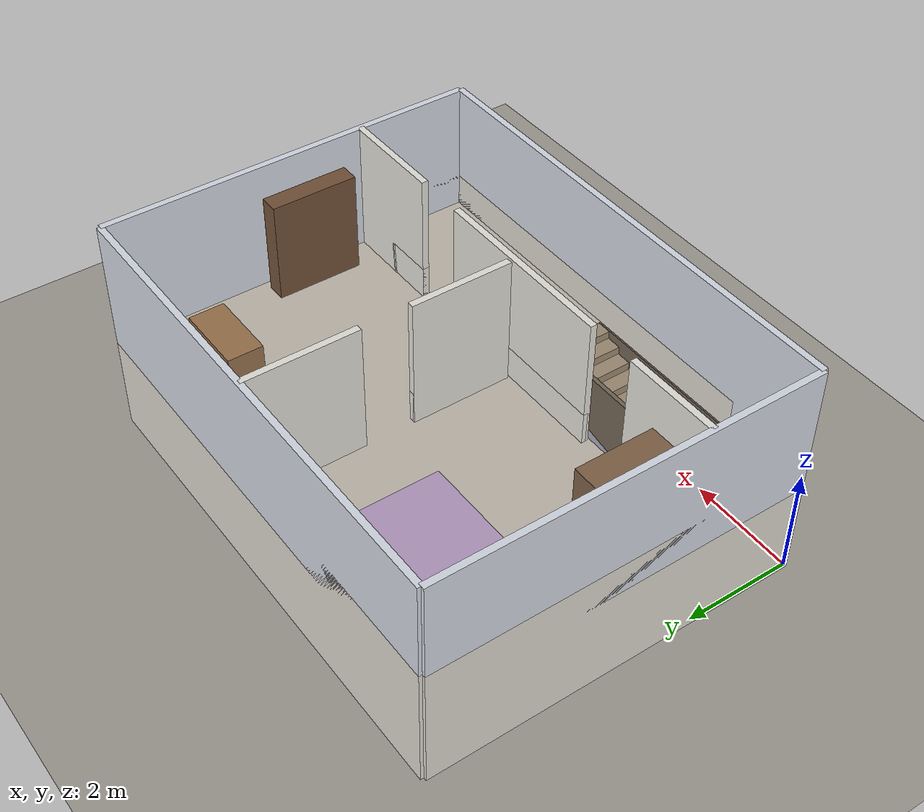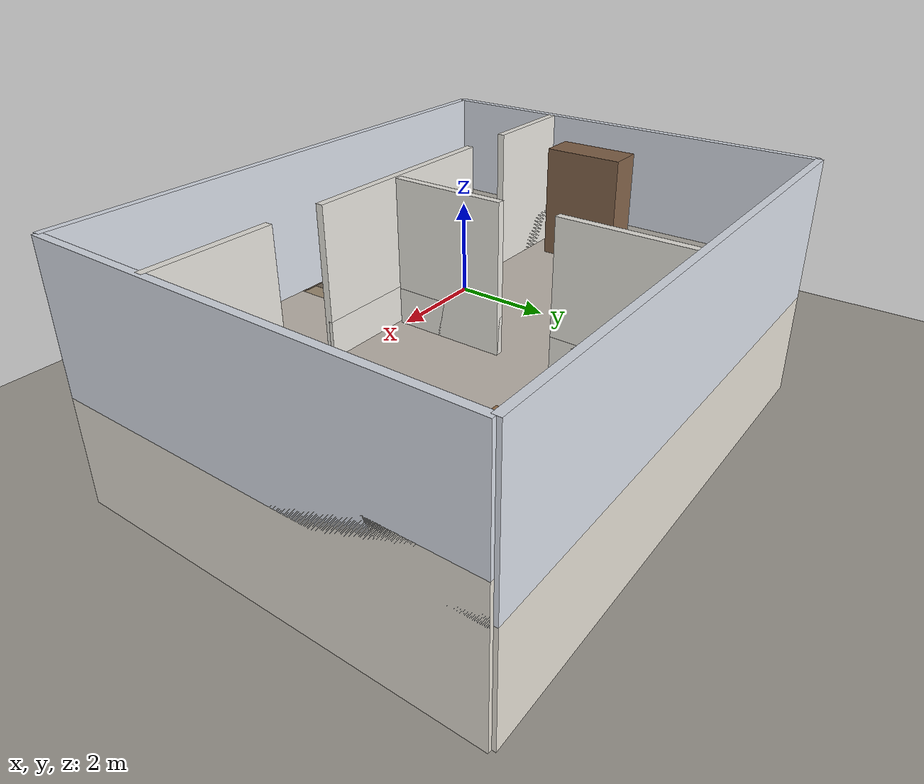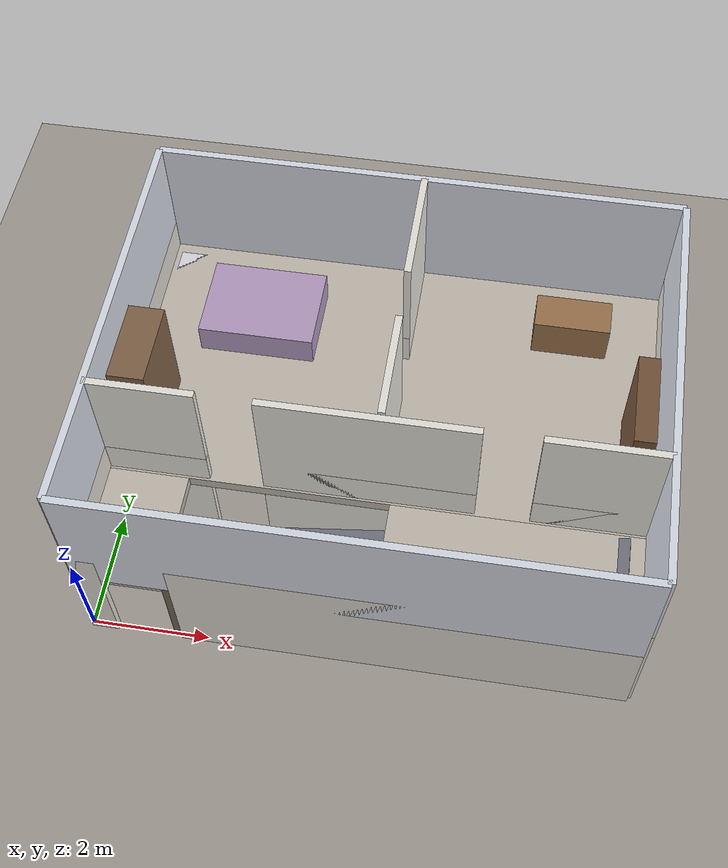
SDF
<?xml version="1.0" ?>
<sdf version="1.9">
  <world name="house_two_floor">

    <physics name="fast" type="dart">
      <max_step_size>0.001</max_step_size>
      <real_time_factor>1.0</real_time_factor>
      <dart>
        <solver><solver_type>dantzig</solver_type></solver>
        <collision_detector>bullet</collision_detector>
      </dart>
    </physics>

    <plugin filename="gz-sim-physics-system"
            name="gz::sim::systems::Physics"/>
    <plugin filename="gz-sim-user-commands-system"
            name="gz::sim::systems::UserCommands"/>
    <plugin filename="gz-sim-scene-broadcaster-system"
            name="gz::sim::systems::SceneBroadcaster"/>
    <plugin filename="gz-sim-sensors-system"
            name="gz::sim::systems::Sensors">
      <render_engine>ogre2</render_engine>
    </plugin>
    <plugin filename="gz-sim-imu-system"
            name="gz::sim::systems::Imu"/>
    <plugin filename="gz-sim-contact-system"
            name="gz::sim::systems::Contact"/>

    <gravity>0 0 -9.81</gravity>
    <scene>
      <ambient>0.55 0.55 0.55 1</ambient>
      <background>0.75 0.82 0.90 1</background>
      <shadows>true</shadows>
    </scene>

    <light type="directional" name="sun">
      <cast_shadows>true</cast_shadows>
      <pose>0 0 10 0 0 0</pose>
      <diffuse>0.9 0.9 0.9 1</diffuse>
      <specular>0.2 0.2 0.2 1</specular>
      <direction>-0.4 0.3 -0.9</direction>
    </light>

    <model name="ground_plane">
      <static>true</static>
      <link name="link">
        <collision name="collision">
          <geometry><plane><normal>0 0 1</normal><size>60 60</size></plane></geometry>
          <surface><friction><ode><mu>1.0</mu><mu2>1.0</mu2></ode></friction></surface>
        </collision>
        <visual name="visual">
          <geometry><plane><normal>0 0 1</normal><size>60 60</size></plane></geometry>
          <material>
            <ambient>0.62 0.60 0.57 1</ambient>
            <diffuse>0.62 0.60 0.57 1</diffuse>
          </material>
        </visual>
      </link>
    </model>

    <model name="shell_g_south_0">
      <static>true</static>
      <pose>0.2250 0.0000 1.2000 0 0 0.00000</pose>
      <link name="link">
        <collision name="collision">
          <geometry><box><size>0.4500 0.1200 2.4000</size></box></geometry>
          <surface>
            <friction><ode><mu>1.0</mu><mu2>1.0</mu2></ode></friction>
            <contact><ode><kp>1e7</kp><kd>100</kd></ode></contact>
          </surface>
        </collision>
        <visual name="visual">
          <geometry><box><size>0.4500 0.1200 2.4000</size></box></geometry>
          <material>
            <ambient>0.88 0.86 0.82 1.0</ambient>
            <diffuse>0.88 0.86 0.82 1.0</diffuse>
          </material>
        </visual>
      </link>
    </model>

    <model name="shell_g_south_1">
      <static>true</static>
      <pose>5.2750 0.0000 1.2000 0 0 0.00000</pose>
      <link name="link">
        <collision name="collision">
          <geometry><box><size>7.4500 0.1200 2.4000</size></box></geometry>
          <surface>
            <friction><ode><mu>1.0</mu><mu2>1.0</mu2></ode></friction>
            <contact><ode><kp>1e7</kp><kd>100</kd></ode></contact>
          </surface>
        </collision>
        <visual name="visual">
          <geometry><box><size>7.4500 0.1200 2.4000</size></box></geometry>
          <material>
            <ambient>0.88 0.86 0.82 1.0</ambient>
            <diffuse>0.88 0.86 0.82 1.0</diffuse>
          </material>
        </visual>
      </link>
    </model>

    <model name="shell_g_north_0">
      <static>true</static>
      <pose>4.5000 7.0000 1.2000 0 0 0.00000</pose>
      <link name="link">
        <collision name="collision">
          <geometry><box><size>9.0000 0.1200 2.4000</size></box></geometry>
          <surface>
            <friction><ode><mu>1.0</mu><mu2>1.0</mu2></ode></friction>
            <contact><ode><kp>1e7</kp><kd>100</kd></ode></contact>
          </surface>
        </collision>
        <visual name="visual">
          <geometry><box><size>9.0000 0.1200 2.4000</size></box></geometry>
          <material>
            <ambient>0.88 0.86 0.82 1.0</ambient>
            <diffuse>0.88 0.86 0.82 1.0</diffuse>
          </material>
        </visual>
      </link>
    </model>

    <model name="shell_g_west_0">
      <static>true</static>
      <pose>0.0000 3.5000 1.2000 0 0 0.00000</pose>
      <link name="link">
        <collision name="collision">
          <geometry><box><size>0.1200 7.0000 2.4000</size></box></geometry>
          <surface>
            <friction><ode><mu>1.0</mu><mu2>1.0</mu2></ode></friction>
            <contact><ode><kp>1e7</kp><kd>100</kd></ode></contact>
          </surface>
        </collision>
        <visual name="visual">
          <geometry><box><size>0.1200 7.0000 2.4000</size></box></geometry>
          <material>
            <ambient>0.88 0.86 0.82 1.0</ambient>
            <diffuse>0.88 0.86 0.82 1.0</diffuse>
          </material>
        </visual>
      </link>
    </model>

    <model name="shell_g_east_0">
      <static>true</static>
      <pose>9.0000 3.5000 1.2000 0 0 0.00000</pose>
      <link name="link">
        <collision name="collision">
          <geometry><box><size>0.1200 7.0000 2.4000</size></box></geometry>
          <surface>
            <friction><ode><mu>1.0</mu><mu2>1.0</mu2></ode></friction>
            <contact><ode><kp>1e7</kp><kd>100</kd></ode></contact>
          </surface>
        </collision>
        <visual name="visual">
          <geometry><box><size>0.1200 7.0000 2.4000</size></box></geometry>
          <material>
            <ambient>0.88 0.86 0.82 1.0</ambient>
            <diffuse>0.88 0.86 0.82 1.0</diffuse>
          </material>
        </visual>
      </link>
    </model>

    <model name="shell_u_south_0">
      <static>true</static>
      <pose>4.5000 0.0000 3.0000 0 0 0.00000</pose>
      <link name="link">
        <collision name="collision">
          <geometry><box><size>9.0000 0.1200 2.4000</size></box></geometry>
          <surface>
            <friction><ode><mu>1.0</mu><mu2>1.0</mu2></ode></friction>
            <contact><ode><kp>1e7</kp><kd>100</kd></ode></contact>
          </surface>
        </collision>
        <visual name="visual">
          <geometry><box><size>9.0000 0.1200 2.4000</size></box></geometry>
          <material>
            <ambient>0.84 0.86 0.9 1.0</ambient>
            <diffuse>0.84 0.86 0.9 1.0</diffuse>
          </material>
        </visual>
      </link>
    </model>

    <model name="shell_u_north_0">
      <static>true</static>
      <pose>4.5000 7.0000 3.0000 0 0 0.00000</pose>
      <link name="link">
        <collision name="collision">
          <geometry><box><size>9.0000 0.1200 2.4000</size></box></geometry>
          <surface>
            <friction><ode><mu>1.0</mu><mu2>1.0</mu2></ode></friction>
            <contact><ode><kp>1e7</kp><kd>100</kd></ode></contact>
          </surface>
        </collision>
        <visual name="visual">
          <geometry><box><size>9.0000 0.1200 2.4000</size></box></geometry>
          <material>
            <ambient>0.84 0.86 0.9 1.0</ambient>
            <diffuse>0.84 0.86 0.9 1.0</diffuse>
          </material>
        </visual>
      </link>
    </model>

    <model name="shell_u_west_0">
      <static>true</static>
      <pose>0.0000 3.5000 3.0000 0 0 0.00000</pose>
      <link name="link">
        <collision name="collision">
          <geometry><box><size>0.1200 7.0000 2.4000</size></box></geometry>
          <surface>
            <friction><ode><mu>1.0</mu><mu2>1.0</mu2></ode></friction>
            <contact><ode><kp>1e7</kp><kd>100</kd></ode></contact>
          </surface>
        </collision>
        <visual name="visual">
          <geometry><box><size>0.1200 7.0000 2.4000</size></box></geometry>
          <material>
            <ambient>0.84 0.86 0.9 1.0</ambient>
            <diffuse>0.84 0.86 0.9 1.0</diffuse>
          </material>
        </visual>
      </link>
    </model>

    <model name="shell_u_east_0">
      <static>true</static>
      <pose>9.0000 3.5000 3.0000 0 0 0.00000</pose>
      <link name="link">
        <collision name="collision">
          <geometry><box><size>0.1200 7.0000 2.4000</size></box></geometry>
          <surface>
            <friction><ode><mu>1.0</mu><mu2>1.0</mu2></ode></friction>
            <contact><ode><kp>1e7</kp><kd>100</kd></ode></contact>
          </surface>
        </collision>
        <visual name="visual">
          <geometry><box><size>0.1200 7.0000 2.4000</size></box></geometry>
          <material>
            <ambient>0.84 0.86 0.9 1.0</ambient>
            <diffuse>0.84 0.86 0.9 1.0</diffuse>
          </material>
        </visual>
      </link>
    </model>

    <model name="part_g_corridor_0">
      <static>true</static>
      <pose>0.8750 2.1000 1.2000 0 0 0.00000</pose>
      <link name="link">
        <collision name="collision">
          <geometry><box><size>1.7500 0.1200 2.4000</size></box></geometry>
          <surface>
            <friction><ode><mu>1.0</mu><mu2>1.0</mu2></ode></friction>
            <contact><ode><kp>1e7</kp><kd>100</kd></ode></contact>
          </surface>
        </collision>
        <visual name="visual">
          <geometry><box><size>1.7500 0.1200 2.4000</size></box></geometry>
          <material>
            <ambient>0.9 0.89 0.86 1.0</ambient>
            <diffuse>0.9 0.89 0.86 1.0</diffuse>
          </material>
        </visual>
      </link>
    </model>

    <model name="part_g_corridor_1">
      <static>true</static>
      <pose>4.4000 2.1000 1.2000 0 0 0.00000</pose>
      <link name="link">
        <collision name="collision">
          <geometry><box><size>3.5000 0.1200 2.4000</size></box></geometry>
          <surface>
            <friction><ode><mu>1.0</mu><mu2>1.0</mu2></ode></friction>
            <contact><ode><kp>1e7</kp><kd>100</kd></ode></contact>
          </surface>
        </collision>
        <visual name="visual">
          <geometry><box><size>3.5000 0.1200 2.4000</size></box></geometry>
          <material>
            <ambient>0.9 0.89 0.86 1.0</ambient>
            <diffuse>0.9 0.89 0.86 1.0</diffuse>
          </material>
        </visual>
      </link>
    </model>

    <model name="part_g_corridor_2">
      <static>true</static>
      <pose>8.0250 2.1000 1.2000 0 0 0.00000</pose>
      <link name="link">
        <collision name="collision">
          <geometry><box><size>1.9500 0.1200 2.4000</size></box></geometry>
          <surface>
            <friction><ode><mu>1.0</mu><mu2>1.0</mu2></ode></friction>
            <contact><ode><kp>1e7</kp><kd>100</kd></ode></contact>
          </surface>
        </collision>
        <visual name="visual">
          <geometry><box><size>1.9500 0.1200 2.4000</size></box></geometry>
          <material>
            <ambient>0.9 0.89 0.86 1.0</ambient>
            <diffuse>0.9 0.89 0.86 1.0</diffuse>
          </material>
        </visual>
      </link>
    </model>

    <model name="part_g_divider_0">
      <static>true</static>
      <pose>4.6000 3.1250 1.2000 0 0 0.00000</pose>
      <link name="link">
        <collision name="collision">
          <geometry><box><size>0.1200 1.8500 2.4000</size></box></geometry>
          <surface>
            <friction><ode><mu>1.0</mu><mu2>1.0</mu2></ode></friction>
            <contact><ode><kp>1e7</kp><kd>100</kd></ode></contact>
          </surface>
        </collision>
        <visual name="visual">
          <geometry><box><size>0.1200 1.8500 2.4000</size></box></geometry>
          <material>
            <ambient>0.9 0.89 0.86 1.0</ambient>
            <diffuse>0.9 0.89 0.86 1.0</diffuse>
          </material>
        </visual>
      </link>
    </model>

    <model name="part_g_divider_1">
      <static>true</static>
      <pose>4.6000 5.9750 1.2000 0 0 0.00000</pose>
      <link name="link">
        <collision name="collision">
          <geometry><box><size>0.1200 2.0500 2.4000</size></box></geometry>
          <surface>
            <friction><ode><mu>1.0</mu><mu2>1.0</mu2></ode></friction>
            <contact><ode><kp>1e7</kp><kd>100</kd></ode></contact>
          </surface>
        </collision>
        <visual name="visual">
          <geometry><box><size>0.1200 2.0500 2.4000</size></box></geometry>
          <material>
            <ambient>0.9 0.89 0.86 1.0</ambient>
            <diffuse>0.9 0.89 0.86 1.0</diffuse>
          </material>
        </visual>
      </link>
    </model>

    <model name="part_u_corridor_0">
      <static>true</static>
      <pose>0.8750 2.1000 3.0000 0 0 0.00000</pose>
      <link name="link">
        <collision name="collision">
          <geometry><box><size>1.7500 0.1200 2.4000</size></box></geometry>
          <surface>
            <friction><ode><mu>1.0</mu><mu2>1.0</mu2></ode></friction>
            <contact><ode><kp>1e7</kp><kd>100</kd></ode></contact>
          </surface>
        </collision>
        <visual name="visual">
          <geometry><box><size>1.7500 0.1200 2.4000</size></box></geometry>
          <material>
            <ambient>0.9 0.89 0.86 1.0</ambient>
            <diffuse>0.9 0.89 0.86 1.0</diffuse>
          </material>
        </visual>
      </link>
    </model>

    <model name="part_u_corridor_1">
      <static>true</static>
      <pose>4.4000 2.1000 3.0000 0 0 0.00000</pose>
      <link name="link">
        <collision name="collision">
          <geometry><box><size>3.5000 0.1200 2.4000</size></box></geometry>
          <surface>
            <friction><ode><mu>1.0</mu><mu2>1.0</mu2></ode></friction>
            <contact><ode><kp>1e7</kp><kd>100</kd></ode></contact>
          </surface>
        </collision>
        <visual name="visual">
          <geometry><box><size>3.5000 0.1200 2.4000</size></box></geometry>
          <material>
            <ambient>0.9 0.89 0.86 1.0</ambient>
            <diffuse>0.9 0.89 0.86 1.0</diffuse>
          </material>
        </visual>
      </link>
    </model>

    <model name="part_u_corridor_2">
      <static>true</static>
      <pose>8.0250 2.1000 3.0000 0 0 0.00000</pose>
      <link name="link">
        <collision name="collision">
          <geometry><box><size>1.9500 0.1200 2.4000</size></box></geometry>
          <surface>
            <friction><ode><mu>1.0</mu><mu2>1.0</mu2></ode></friction>
            <contact><ode><kp>1e7</kp><kd>100</kd></ode></contact>
          </surface>
        </collision>
        <visual name="visual">
          <geometry><box><size>1.9500 0.1200 2.4000</size></box></geometry>
          <material>
            <ambient>0.9 0.89 0.86 1.0</ambient>
            <diffuse>0.9 0.89 0.86 1.0</diffuse>
          </material>
        </visual>
      </link>
    </model>

    <model name="part_u_divider_0">
      <static>true</static>
      <pose>4.6000 3.1250 3.0000 0 0 0.00000</pose>
      <link name="link">
        <collision name="collision">
          <geometry><box><size>0.1200 1.8500 2.4000</size></box></geometry>
          <surface>
            <friction><ode><mu>1.0</mu><mu2>1.0</mu2></ode></friction>
            <contact><ode><kp>1e7</kp><kd>100</kd></ode></contact>
          </surface>
        </collision>
        <visual name="visual">
          <geometry><box><size>0.1200 1.8500 2.4000</size></box></geometry>
          <material>
            <ambient>0.9 0.89 0.86 1.0</ambient>
            <diffuse>0.9 0.89 0.86 1.0</diffuse>
          </material>
        </visual>
      </link>
    </model>

    <model name="part_u_divider_1">
      <static>true</static>
      <pose>4.6000 5.9750 3.0000 0 0 0.00000</pose>
      <link name="link">
        <collision name="collision">
          <geometry><box><size>0.1200 2.0500 2.4000</size></box></geometry>
          <surface>
            <friction><ode><mu>1.0</mu><mu2>1.0</mu2></ode></friction>
            <contact><ode><kp>1e7</kp><kd>100</kd></ode></contact>
          </surface>
        </collision>
        <visual name="visual">
          <geometry><box><size>0.1200 2.0500 2.4000</size></box></geometry>
          <material>
            <ambient>0.9 0.89 0.86 1.0</ambient>
            <diffuse>0.9 0.89 0.86 1.0</diffuse>
          </material>
        </visual>
      </link>
    </model>

    <model name="slab_north">
      <static>true</static>
      <pose>4.5000 4.5000 1.7000 0 0 0.00000</pose>
      <link name="link">
        <collision name="collision">
          <geometry><box><size>9.0000 5.0000 0.2000</size></box></geometry>
          <surface>
            <friction><ode><mu>1.0</mu><mu2>1.0</mu2></ode></friction>
            <contact><ode><kp>1e7</kp><kd>100</kd></ode></contact>
          </surface>
        </collision>
        <visual name="visual">
          <geometry><box><size>9.0000 5.0000 0.2000</size></box></geometry>
          <material>
            <ambient>0.75 0.72 0.68 1</ambient>
            <diffuse>0.75 0.72 0.68 1</diffuse>
          </material>
        </visual>
      </link>
    </model>

    <model name="slab_south_east">
      <static>true</static>
      <pose>6.8800 1.0000 1.7000 0 0 0.00000</pose>
      <link name="link">
        <collision name="collision">
          <geometry><box><size>4.2400 2.0000 0.2000</size></box></geometry>
          <surface>
            <friction><ode><mu>1.0</mu><mu2>1.0</mu2></ode></friction>
            <contact><ode><kp>1e7</kp><kd>100</kd></ode></contact>
          </surface>
        </collision>
        <visual name="visual">
          <geometry><box><size>4.2400 2.0000 0.2000</size></box></geometry>
          <material>
            <ambient>0.75 0.72 0.68 1</ambient>
            <diffuse>0.75 0.72 0.68 1</diffuse>
          </material>
        </visual>
      </link>
    </model>

    <model name="slab_south_west">
      <static>true</static>
      <pose>0.7000 1.0000 1.7000 0 0 0.00000</pose>
      <link name="link">
        <collision name="collision">
          <geometry><box><size>1.4000 2.0000 0.2000</size></box></geometry>
          <surface>
            <friction><ode><mu>1.0</mu><mu2>1.0</mu2></ode></friction>
            <contact><ode><kp>1e7</kp><kd>100</kd></ode></contact>
          </surface>
        </collision>
        <visual name="visual">
          <geometry><box><size>1.4000 2.0000 0.2000</size></box></geometry>
          <material>
            <ambient>0.75 0.72 0.68 1</ambient>
            <diffuse>0.75 0.72 0.68 1</diffuse>
          </material>
        </visual>
      </link>
    </model>

    <model name="stair_step_0">
      <static>true</static>
      <pose>1.5400 0.5500 0.0750 0 0 0.00000</pose>
      <link name="link">
        <collision name="collision">
          <geometry><box><size>0.2800 0.9000 0.1500</size></box></geometry>
          <surface>
            <friction><ode><mu>1.1</mu><mu2>1.1</mu2></ode></friction>
            <contact><ode><kp>1e7</kp><kd>100</kd></ode></contact>
          </surface>
        </collision>
        <visual name="visual">
          <geometry><box><size>0.2800 0.9000 0.1500</size></box></geometry>
          <material>
            <ambient>0.62 0.55 0.45 1.0</ambient>
            <diffuse>0.62 0.55 0.45 1.0</diffuse>
          </material>
        </visual>
      </link>
    </model>

    <model name="stair_step_1">
      <static>true</static>
      <pose>1.8200 0.5500 0.1500 0 0 0.00000</pose>
      <link name="link">
        <collision name="collision">
          <geometry><box><size>0.2800 0.9000 0.3000</size></box></geometry>
          <surface>
            <friction><ode><mu>1.1</mu><mu2>1.1</mu2></ode></friction>
            <contact><ode><kp>1e7</kp><kd>100</kd></ode></contact>
          </surface>
        </collision>
        <visual name="visual">
          <geometry><box><size>0.2800 0.9000 0.3000</size></box></geometry>
          <material>
            <ambient>0.62 0.55 0.45 1.0</ambient>
            <diffuse>0.62 0.55 0.45 1.0</diffuse>
          </material>
        </visual>
      </link>
    </model>

    <model name="stair_step_2">
      <static>true</static>
      <pose>2.1000 0.5500 0.2250 0 0 0.00000</pose>
      <link name="link">
        <collision name="collision">
          <geometry><box><size>0.2800 0.9000 0.4500</size></box></geometry>
          <surface>
            <friction><ode><mu>1.1</mu><mu2>1.1</mu2></ode></friction>
            <contact><ode><kp>1e7</kp><kd>100</kd></ode></contact>
          </surface>
        </collision>
        <visual name="visual">
          <geometry><box><size>0.2800 0.9000 0.4500</size></box></geometry>
          <material>
            <ambient>0.62 0.55 0.45 1.0</ambient>
            <diffuse>0.62 0.55 0.45 1.0</diffuse>
          </material>
        </visual>
      </link>
    </model>

    <model name="stair_step_3">
      <static>true</static>
      <pose>2.3800 0.5500 0.3000 0 0 0.00000</pose>
      <link name="link">
        <collision name="collision">
          <geometry><box><size>0.2800 0.9000 0.6000</size></box></geometry>
          <surface>
            <friction><ode><mu>1.1</mu><mu2>1.1</mu2></ode></friction>
            <contact><ode><kp>1e7</kp><kd>100</kd></ode></contact>
          </surface>
        </collision>
        <visual name="visual">
          <geometry><box><size>0.2800 0.9000 0.6000</size></box></geometry>
          <material>
            <ambient>0.62 0.55 0.45 1.0</ambient>
            <diffuse>0.62 0.55 0.45 1.0</diffuse>
          </material>
        </visual>
      </link>
    </model>

    <model name="stair_step_4">
      <static>true</static>
      <pose>2.6600 0.5500 0.3750 0 0 0.00000</pose>
      <link name="link">
        <collision name="collision">
          <geometry><box><size>0.2800 0.9000 0.7500</size></box></geometry>
          <surface>
            <friction><ode><mu>1.1</mu><mu2>1.1</mu2></ode></friction>
            <contact><ode><kp>1e7</kp><kd>100</kd></ode></contact>
          </surface>
        </collision>
        <visual name="visual">
          <geometry><box><size>0.2800 0.9000 0.7500</size></box></geometry>
          <material>
            <ambient>0.62 0.55 0.45 1.0</ambient>
            <diffuse>0.62 0.55 0.45 1.0</diffuse>
          </material>
        </visual>
      </link>
    </model>

    <model name="stair_step_5">
      <static>true</static>
      <pose>2.9400 0.5500 0.4500 0 0 0.00000</pose>
      <link name="link">
        <collision name="collision">
          <geometry><box><size>0.2800 0.9000 0.9000</size></box></geometry>
          <surface>
            <friction><ode><mu>1.1</mu><mu2>1.1</mu2></ode></friction>
            <contact><ode><kp>1e7</kp><kd>100</kd></ode></contact>
          </surface>
        </collision>
        <visual name="visual">
          <geometry><box><size>0.2800 0.9000 0.9000</size></box></geometry>
          <material>
            <ambient>0.62 0.55 0.45 1.0</ambient>
            <diffuse>0.62 0.55 0.45 1.0</diffuse>
          </material>
        </visual>
      </link>
    </model>

    <model name="stair_step_6">
      <static>true</static>
      <pose>3.2200 0.5500 0.5250 0 0 0.00000</pose>
      <link name="link">
        <collision name="collision">
          <geometry><box><size>0.2800 0.9000 1.0500</size></box></geometry>
          <surface>
            <friction><ode><mu>1.1</mu><mu2>1.1</mu2></ode></friction>
            <contact><ode><kp>1e7</kp><kd>100</kd></ode></contact>
          </surface>
        </collision>
        <visual name="visual">
          <geometry><box><size>0.2800 0.9000 1.0500</size></box></geometry>
          <material>
            <ambient>0.62 0.55 0.45 1.0</ambient>
            <diffuse>0.62 0.55 0.45 1.0</diffuse>
          </material>
        </visual>
      </link>
    </model>

    <model name="stair_step_7">
      <static>true</static>
      <pose>3.5000 0.5500 0.6000 0 0 0.00000</pose>
      <link name="link">
        <collision name="collision">
          <geometry><box><size>0.2800 0.9000 1.2000</size></box></geometry>
          <surface>
            <friction><ode><mu>1.1</mu><mu2>1.1</mu2></ode></friction>
            <contact><ode><kp>1e7</kp><kd>100</kd></ode></contact>
          </surface>
        </collision>
        <visual name="visual">
          <geometry><box><size>0.2800 0.9000 1.2000</size></box></geometry>
          <material>
            <ambient>0.62 0.55 0.45 1.0</ambient>
            <diffuse>0.62 0.55 0.45 1.0</diffuse>
          </material>
        </visual>
      </link>
    </model>

    <model name="stair_step_8">
      <static>true</static>
      <pose>3.7800 0.5500 0.6750 0 0 0.00000</pose>
      <link name="link">
        <collision name="collision">
          <geometry><box><size>0.2800 0.9000 1.3500</size></box></geometry>
          <surface>
            <friction><ode><mu>1.1</mu><mu2>1.1</mu2></ode></friction>
            <contact><ode><kp>1e7</kp><kd>100</kd></ode></contact>
          </surface>
        </collision>
        <visual name="visual">
          <geometry><box><size>0.2800 0.9000 1.3500</size></box></geometry>
          <material>
            <ambient>0.62 0.55 0.45 1.0</ambient>
            <diffuse>0.62 0.55 0.45 1.0</diffuse>
          </material>
        </visual>
      </link>
    </model>

    <model name="stair_step_9">
      <static>true</static>
      <pose>4.0600 0.5500 0.7500 0 0 0.00000</pose>
      <link name="link">
        <collision name="collision">
          <geometry><box><size>0.2800 0.9000 1.5000</size></box></geometry>
          <surface>
            <friction><ode><mu>1.1</mu><mu2>1.1</mu2></ode></friction>
            <contact><ode><kp>1e7</kp><kd>100</kd></ode></contact>
          </surface>
        </collision>
        <visual name="visual">
          <geometry><box><size>0.2800 0.9000 1.5000</size></box></geometry>
          <material>
            <ambient>0.62 0.55 0.45 1.0</ambient>
            <diffuse>0.62 0.55 0.45 1.0</diffuse>
          </material>
        </visual>
      </link>
    </model>

    <model name="stair_step_10">
      <static>true</static>
      <pose>4.3400 0.5500 0.8250 0 0 0.00000</pose>
      <link name="link">
        <collision name="collision">
          <geometry><box><size>0.2800 0.9000 1.6500</size></box></geometry>
          <surface>
            <friction><ode><mu>1.1</mu><mu2>1.1</mu2></ode></friction>
            <contact><ode><kp>1e7</kp><kd>100</kd></ode></contact>
          </surface>
        </collision>
        <visual name="visual">
          <geometry><box><size>0.2800 0.9000 1.6500</size></box></geometry>
          <material>
            <ambient>0.62 0.55 0.45 1.0</ambient>
            <diffuse>0.62 0.55 0.45 1.0</diffuse>
          </material>
        </visual>
      </link>
    </model>

    <model name="stair_step_11">
      <static>true</static>
      <pose>4.6200 0.5500 0.9000 0 0 0.00000</pose>
      <link name="link">
        <collision name="collision">
          <geometry><box><size>0.2800 0.9000 1.8000</size></box></geometry>
          <surface>
            <friction><ode><mu>1.1</mu><mu2>1.1</mu2></ode></friction>
            <contact><ode><kp>1e7</kp><kd>100</kd></ode></contact>
          </surface>
        </collision>
        <visual name="visual">
          <geometry><box><size>0.2800 0.9000 1.8000</size></box></geometry>
          <material>
            <ambient>0.62 0.55 0.45 1.0</ambient>
            <diffuse>0.62 0.55 0.45 1.0</diffuse>
          </material>
        </visual>
      </link>
    </model>

    <model name="stair_stringer_l">
      <static>true</static>
      <pose>3.0800 1.0500 0.9000 0 0 0.00000</pose>
      <link name="link">
        <collision name="collision">
          <geometry><box><size>3.3600 0.0800 1.8000</size></box></geometry>
          <surface>
            <friction><ode><mu>1.0</mu><mu2>1.0</mu2></ode></friction>
            <contact><ode><kp>1e7</kp><kd>100</kd></ode></contact>
          </surface>
        </collision>
        <visual name="visual">
          <geometry><box><size>3.3600 0.0800 1.8000</size></box></geometry>
          <material>
            <ambient>0.45 0.4 0.34 1.0</ambient>
            <diffuse>0.45 0.4 0.34 1.0</diffuse>
          </material>
        </visual>
      </link>
    </model>

    <model name="stair_stringer_r">
      <static>true</static>
      <pose>3.0800 0.0500 0.9000 0 0 0.00000</pose>
      <link name="link">
        <collision name="collision">
          <geometry><box><size>3.3600 0.0800 1.8000</size></box></geometry>
          <surface>
            <friction><ode><mu>1.0</mu><mu2>1.0</mu2></ode></friction>
            <contact><ode><kp>1e7</kp><kd>100</kd></ode></contact>
          </surface>
        </collision>
        <visual name="visual">
          <geometry><box><size>3.3600 0.0800 1.8000</size></box></geometry>
          <material>
            <ambient>0.45 0.4 0.34 1.0</ambient>
            <diffuse>0.45 0.4 0.34 1.0</diffuse>
          </material>
        </visual>
      </link>
    </model>

    <model name="floor_ramp">
      <static>true</static>
      <pose>4.5000 1.5500 0.9000 0 -0.21109 0.00000</pose>
      <link name="link">
        <collision name="collision">
          <geometry><box><size>8.5907 0.8000 0.08</size></box></geometry>
          <surface><friction><ode><mu>1.2</mu><mu2>1.0</mu2></ode></friction></surface>
        </collision>
        <visual name="visual">
          <geometry><box><size>8.5907 0.8000 0.08</size></box></geometry>
          <material><ambient>0.5 0.5 0.55 1</ambient><diffuse>0.5 0.5 0.55 1</diffuse></material>
        </visual>
      </link>
    </model>

    <model name="threshold_0">
      <static>true</static>
      <pose>2.2000 2.1000 0.0110 0 0 0.00000</pose>
      <link name="link">
        <collision name="collision">
          <geometry><box><size>0.9000 0.0600 0.0220</size></box></geometry>
          <surface>
            <friction><ode><mu>0.9</mu><mu2>0.9</mu2></ode></friction>
            <contact><ode><kp>1e7</kp><kd>100</kd></ode></contact>
          </surface>
        </collision>
        <visual name="visual">
          <geometry><box><size>0.9000 0.0600 0.0220</size></box></geometry>
          <material>
            <ambient>0.4 0.3 0.22 1.0</ambient>
            <diffuse>0.4 0.3 0.22 1.0</diffuse>
          </material>
        </visual>
      </link>
    </model>

    <model name="threshold_1">
      <static>true</static>
      <pose>6.6000 2.1000 0.0150 0 0 0.00000</pose>
      <link name="link">
        <collision name="collision">
          <geometry><box><size>0.9000 0.0600 0.0300</size></box></geometry>
          <surface>
            <friction><ode><mu>0.9</mu><mu2>0.9</mu2></ode></friction>
            <contact><ode><kp>1e7</kp><kd>100</kd></ode></contact>
          </surface>
        </collision>
        <visual name="visual">
          <geometry><box><size>0.9000 0.0600 0.0300</size></box></geometry>
          <material>
            <ambient>0.4 0.3 0.22 1.0</ambient>
            <diffuse>0.4 0.3 0.22 1.0</diffuse>
          </material>
        </visual>
      </link>
    </model>

    <model name="threshold_2">
      <static>true</static>
      <pose>4.6000 4.5000 0.0090 0 0 0.00000</pose>
      <link name="link">
        <collision name="collision">
          <geometry><box><size>0.0600 0.9000 0.0180</size></box></geometry>
          <surface>
            <friction><ode><mu>0.9</mu><mu2>0.9</mu2></ode></friction>
            <contact><ode><kp>1e7</kp><kd>100</kd></ode></contact>
          </surface>
        </collision>
        <visual name="visual">
          <geometry><box><size>0.0600 0.9000 0.0180</size></box></geometry>
          <material>
            <ambient>0.4 0.3 0.22 1.0</ambient>
            <diffuse>0.4 0.3 0.22 1.0</diffuse>
          </material>
        </visual>
      </link>
    </model>

    <model name="floor_patch_0">
      <static>true</static>
      <pose>1.6000 4.0000 0.0175 0 0 0.00000</pose>
      <link name="link">
        <collision name="collision">
          <geometry><box><size>1.2000 0.9000 0.0350</size></box></geometry>
          <surface>
            <friction><ode><mu>1.0</mu><mu2>1.0</mu2></ode></friction>
            <contact><ode><kp>1e7</kp><kd>100</kd></ode></contact>
          </surface>
        </collision>
        <visual name="visual">
          <geometry><box><size>1.2000 0.9000 0.0350</size></box></geometry>
          <material>
            <ambient>0.55 0.35 0.3 1.0</ambient>
            <diffuse>0.55 0.35 0.3 1.0</diffuse>
          </material>
        </visual>
      </link>
    </model>

    <model name="floor_patch_1">
      <static>true</static>
      <pose>7.2000 5.2000 0.0140 0 0 0.00000</pose>
      <link name="link">
        <collision name="collision">
          <geometry><box><size>1.0000 1.0000 0.0280</size></box></geometry>
          <surface>
            <friction><ode><mu>1.0</mu><mu2>1.0</mu2></ode></friction>
            <contact><ode><kp>1e7</kp><kd>100</kd></ode></contact>
          </surface>
        </collision>
        <visual name="visual">
          <geometry><box><size>1.0000 1.0000 0.0280</size></box></geometry>
          <material>
            <ambient>0.55 0.35 0.3 1.0</ambient>
            <diffuse>0.55 0.35 0.3 1.0</diffuse>
          </material>
        </visual>
      </link>
    </model>

    <model name="kitchen_table">
      <static>true</static>
      <pose>2.0000 4.8000 0.3750 0 0 0.00000</pose>
      <link name="link">
        <collision name="collision">
          <geometry><box><size>1.2000 0.8000 0.7500</size></box></geometry>
          <surface>
            <friction><ode><mu>1.0</mu><mu2>1.0</mu2></ode></friction>
            <contact><ode><kp>1e7</kp><kd>100</kd></ode></contact>
          </surface>
        </collision>
        <visual name="visual">
          <geometry><box><size>1.2000 0.8000 0.7500</size></box></geometry>
          <material>
            <ambient>0.55 0.35 0.2 1</ambient>
            <diffuse>0.55 0.35 0.2 1</diffuse>
          </material>
        </visual>
      </link>
    </model>

    <model name="kitchen_chair">
      <static>true</static>
      <pose>2.0000 3.9000 0.4500 0 0 0.00000</pose>
      <link name="link">
        <collision name="collision">
          <geometry><box><size>0.4200 0.4200 0.9000</size></box></geometry>
          <surface>
            <friction><ode><mu>1.0</mu><mu2>1.0</mu2></ode></friction>
            <contact><ode><kp>1e7</kp><kd>100</kd></ode></contact>
          </surface>
        </collision>
        <visual name="visual">
          <geometry><box><size>0.4200 0.4200 0.9000</size></box></geometry>
          <material>
            <ambient>0.3 0.3 0.35 1</ambient>
            <diffuse>0.3 0.3 0.35 1</diffuse>
          </material>
        </visual>
      </link>
    </model>

    <model name="fridge">
      <static>true</static>
      <pose>0.5000 6.4000 0.9000 0 0 0.00000</pose>
      <link name="link">
        <collision name="collision">
          <geometry><box><size>0.7000 0.7000 1.8000</size></box></geometry>
          <surface>
            <friction><ode><mu>1.0</mu><mu2>1.0</mu2></ode></friction>
            <contact><ode><kp>1e7</kp><kd>100</kd></ode></contact>
          </surface>
        </collision>
        <visual name="visual">
          <geometry><box><size>0.7000 0.7000 1.8000</size></box></geometry>
          <material>
            <ambient>0.85 0.85 0.88 1</ambient>
            <diffuse>0.85 0.85 0.88 1</diffuse>
          </material>
        </visual>
      </link>
    </model>

    <model name="sofa">
      <static>true</static>
      <pose>7.4000 3.2000 0.4000 0 0 0.00000</pose>
      <link name="link">
        <collision name="collision">
          <geometry><box><size>1.9000 0.8500 0.8000</size></box></geometry>
          <surface>
            <friction><ode><mu>1.0</mu><mu2>1.0</mu2></ode></friction>
            <contact><ode><kp>1e7</kp><kd>100</kd></ode></contact>
          </surface>
        </collision>
        <visual name="visual">
          <geometry><box><size>1.9000 0.8500 0.8000</size></box></geometry>
          <material>
            <ambient>0.25 0.4 0.55 1</ambient>
            <diffuse>0.25 0.4 0.55 1</diffuse>
          </material>
        </visual>
      </link>
    </model>

    <model name="tv_stand">
      <static>true</static>
      <pose>7.4000 6.5000 0.2750 0 0 0.00000</pose>
      <link name="link">
        <collision name="collision">
          <geometry><box><size>1.4000 0.4000 0.5500</size></box></geometry>
          <surface>
            <friction><ode><mu>1.0</mu><mu2>1.0</mu2></ode></friction>
            <contact><ode><kp>1e7</kp><kd>100</kd></ode></contact>
          </surface>
        </collision>
        <visual name="visual">
          <geometry><box><size>1.4000 0.4000 0.5500</size></box></geometry>
          <material>
            <ambient>0.15 0.15 0.18 1</ambient>
            <diffuse>0.15 0.15 0.18 1</diffuse>
          </material>
        </visual>
      </link>
    </model>

    <model name="bed">
      <static>true</static>
      <pose>2.0000 5.4000 2.0750 0 0 0.00000</pose>
      <link name="link">
        <collision name="collision">
          <geometry><box><size>2.0000 1.5000 0.5500</size></box></geometry>
          <surface>
            <friction><ode><mu>1.0</mu><mu2>1.0</mu2></ode></friction>
            <contact><ode><kp>1e7</kp><kd>100</kd></ode></contact>
          </surface>
        </collision>
        <visual name="visual">
          <geometry><box><size>2.0000 1.5000 0.5500</size></box></geometry>
          <material>
            <ambient>0.7 0.6 0.75 1</ambient>
            <diffuse>0.7 0.6 0.75 1</diffuse>
          </material>
        </visual>
      </link>
    </model>

    <model name="wardrobe">
      <static>true</static>
      <pose>0.5000 3.2000 2.8000 0 0 0.00000</pose>
      <link name="link">
        <collision name="collision">
          <geometry><box><size>0.6000 1.4000 2.0000</size></box></geometry>
          <surface>
            <friction><ode><mu>1.0</mu><mu2>1.0</mu2></ode></friction>
            <contact><ode><kp>1e7</kp><kd>100</kd></ode></contact>
          </surface>
        </collision>
        <visual name="visual">
          <geometry><box><size>0.6000 1.4000 2.0000</size></box></geometry>
          <material>
            <ambient>0.5 0.38 0.28 1</ambient>
            <diffuse>0.5 0.38 0.28 1</diffuse>
          </material>
        </visual>
      </link>
    </model>

    <model name="desk">
      <static>true</static>
      <pose>7.4000 5.8000 2.1750 0 0 0.00000</pose>
      <link name="link">
        <collision name="collision">
          <geometry><box><size>1.3000 0.6500 0.7500</size></box></geometry>
          <surface>
            <friction><ode><mu>1.0</mu><mu2>1.0</mu2></ode></friction>
            <contact><ode><kp>1e7</kp><kd>100</kd></ode></contact>
          </surface>
        </collision>
        <visual name="visual">
          <geometry><box><size>1.3000 0.6500 0.7500</size></box></geometry>
          <material>
            <ambient>0.6 0.45 0.3 1</ambient>
            <diffuse>0.6 0.45 0.3 1</diffuse>
          </material>
        </visual>
      </link>
    </model>

    <model name="bookshelf">
      <static>true</static>
      <pose>8.6000 3.4000 2.7500 0 0 0.00000</pose>
      <link name="link">
        <collision name="collision">
          <geometry><box><size>0.3500 1.6000 1.9000</size></box></geometry>
          <surface>
            <friction><ode><mu>1.0</mu><mu2>1.0</mu2></ode></friction>
            <contact><ode><kp>1e7</kp><kd>100</kd></ode></contact>
          </surface>
        </collision>
        <visual name="visual">
          <geometry><box><size>0.3500 1.6000 1.9000</size></box></geometry>
          <material>
            <ambient>0.45 0.32 0.22 1</ambient>
            <diffuse>0.45 0.32 0.22 1</diffuse>
          </material>
        </visual>
      </link>
    </model>

  </world>
</sdf>
